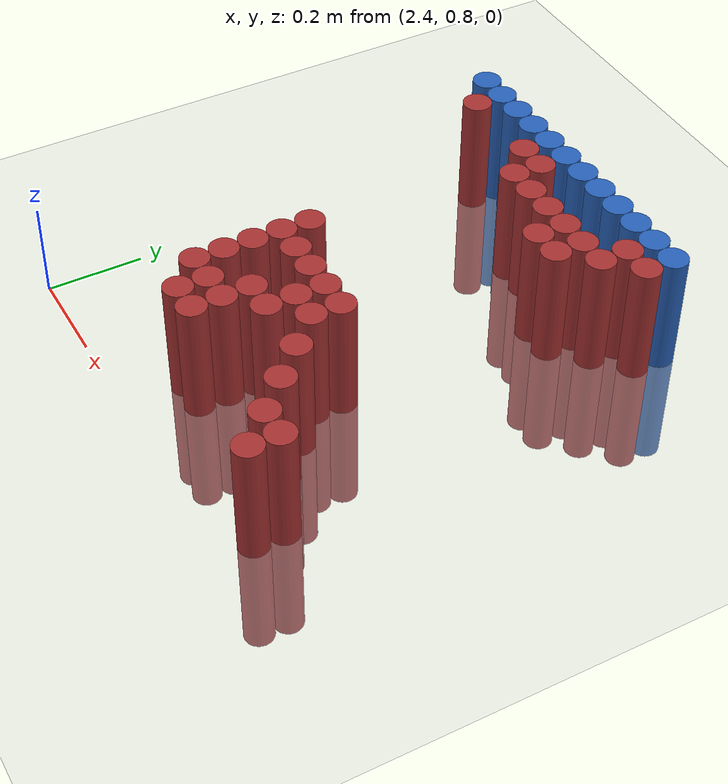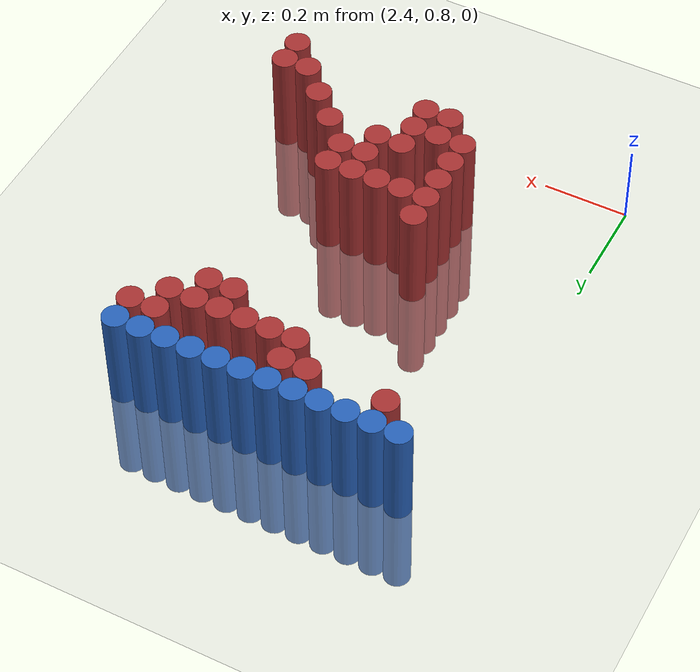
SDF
<sdf version="1.6">
 <world name="default">
  <model name="ground_plane">
   <static>1</static>
   <link name="link">
    <collision name="collision">
     <geometry><plane><normal>0 0 1</normal><size>100 100</size></plane></geometry>
     <surface><friction><ode><mu>100</mu><mu2>50</mu2></ode></friction></surface>
    </collision>
    <visual name="visual">
     <cast_shadows>0</cast_shadows>
     <geometry><plane><normal>0 0 1</normal><size>100 100</size></plane></geometry>
     <material>
      <script><uri>file://media/materials/scripts/gazebo.material</uri><name>Gazebo/Grey</name></script>
     </material>
    </visual>
   </link>
  </model>
  <model name="unit_cylinder_102">
   <static>1</static>
   <pose>2.490000 1.770000 0.000000 0.000000 0.000000 0.000000</pose>
   <link name="link">
    <inertial>
     <mass>1</mass>
     <inertia><ixx>0.145833</ixx><ixy>0</ixy><ixz>0</ixz><iyy>0.145833</iyy><iyz>0</iyz><izz>0.125</izz></inertia>
    </inertial>
    <collision name="collision">
     <geometry><cylinder><radius>0.030000</radius><length>0.5</length></cylinder></geometry>
    </collision>
    <visual name="visual">
     <geometry><cylinder><radius>0.030000</radius><length>0.5</length></cylinder></geometry>
     <material>
      <ambient>0.152000 0.379000 0.720000 1</ambient>
      <diffuse>0.152000 0.379000 0.720000 1</diffuse>
     </material>
     <material>
      <script><name>Gazebo/Grey</name><uri>file://media/materials/scripts/gazebo.material</uri></script>
     </material>
    </visual>
   </link>
  </model>
  <model name="unit_cylinder_103">
   <static>1</static>
   <pose>2.550000 1.770000 0.000000 0.000000 0.000000 0.000000</pose>
   <link name="link">
    <inertial>
     <mass>1</mass>
     <inertia><ixx>0.145833</ixx><ixy>0</ixy><ixz>0</ixz><iyy>0.145833</iyy><iyz>0</iyz><izz>0.125</izz></inertia>
    </inertial>
    <collision name="collision">
     <geometry><cylinder><radius>0.030000</radius><length>0.5</length></cylinder></geometry>
    </collision>
    <visual name="visual">
     <geometry><cylinder><radius>0.030000</radius><length>0.5</length></cylinder></geometry>
     <material>
      <ambient>0.152000 0.379000 0.720000 1</ambient>
      <diffuse>0.152000 0.379000 0.720000 1</diffuse>
     </material>
     <material>
      <script><name>Gazebo/Grey</name><uri>file://media/materials/scripts/gazebo.material</uri></script>
     </material>
    </visual>
   </link>
  </model>
  <model name="unit_cylinder_104">
   <static>1</static>
   <pose>2.610000 1.770000 0.000000 0.000000 0.000000 0.000000</pose>
   <link name="link">
    <inertial>
     <mass>1</mass>
     <inertia><ixx>0.145833</ixx><ixy>0</ixy><ixz>0</ixz><iyy>0.145833</iyy><iyz>0</iyz><izz>0.125</izz></inertia>
    </inertial>
    <collision name="collision">
     <geometry><cylinder><radius>0.030000</radius><length>0.5</length></cylinder></geometry>
    </collision>
    <visual name="visual">
     <geometry><cylinder><radius>0.030000</radius><length>0.5</length></cylinder></geometry>
     <material>
      <ambient>0.152000 0.379000 0.720000 1</ambient>
      <diffuse>0.152000 0.379000 0.720000 1</diffuse>
     </material>
     <material>
      <script><name>Gazebo/Grey</name><uri>file://media/materials/scripts/gazebo.material</uri></script>
     </material>
    </visual>
   </link>
  </model>
  <model name="unit_cylinder_105">
   <static>1</static>
   <pose>2.670000 1.770000 0.000000 0.000000 0.000000 0.000000</pose>
   <link name="link">
    <inertial>
     <mass>1</mass>
     <inertia><ixx>0.145833</ixx><ixy>0</ixy><ixz>0</ixz><iyy>0.145833</iyy><iyz>0</iyz><izz>0.125</izz></inertia>
    </inertial>
    <collision name="collision">
     <geometry><cylinder><radius>0.030000</radius><length>0.5</length></cylinder></geometry>
    </collision>
    <visual name="visual">
     <geometry><cylinder><radius>0.030000</radius><length>0.5</length></cylinder></geometry>
     <material>
      <ambient>0.152000 0.379000 0.720000 1</ambient>
      <diffuse>0.152000 0.379000 0.720000 1</diffuse>
     </material>
     <material>
      <script><name>Gazebo/Grey</name><uri>file://media/materials/scripts/gazebo.material</uri></script>
     </material>
    </visual>
   </link>
  </model>
  <model name="unit_cylinder_106">
   <static>1</static>
   <pose>2.730000 1.770000 0.000000 0.000000 0.000000 0.000000</pose>
   <link name="link">
    <inertial>
     <mass>1</mass>
     <inertia><ixx>0.145833</ixx><ixy>0</ixy><ixz>0</ixz><iyy>0.145833</iyy><iyz>0</iyz><izz>0.125</izz></inertia>
    </inertial>
    <collision name="collision">
     <geometry><cylinder><radius>0.030000</radius><length>0.5</length></cylinder></geometry>
    </collision>
    <visual name="visual">
     <geometry><cylinder><radius>0.030000</radius><length>0.5</length></cylinder></geometry>
     <material>
      <ambient>0.152000 0.379000 0.720000 1</ambient>
      <diffuse>0.152000 0.379000 0.720000 1</diffuse>
     </material>
     <material>
      <script><name>Gazebo/Grey</name><uri>file://media/materials/scripts/gazebo.material</uri></script>
     </material>
    </visual>
   </link>
  </model>
  <model name="unit_cylinder_107">
   <static>1</static>
   <pose>2.790000 1.770000 0.000000 0.000000 0.000000 0.000000</pose>
   <link name="link">
    <inertial>
     <mass>1</mass>
     <inertia><ixx>0.145833</ixx><ixy>0</ixy><ixz>0</ixz><iyy>0.145833</iyy><iyz>0</iyz><izz>0.125</izz></inertia>
    </inertial>
    <collision name="collision">
     <geometry><cylinder><radius>0.030000</radius><length>0.5</length></cylinder></geometry>
    </collision>
    <visual name="visual">
     <geometry><cylinder><radius>0.030000</radius><length>0.5</length></cylinder></geometry>
     <material>
      <ambient>0.152000 0.379000 0.720000 1</ambient>
      <diffuse>0.152000 0.379000 0.720000 1</diffuse>
     </material>
     <material>
      <script><name>Gazebo/Grey</name><uri>file://media/materials/scripts/gazebo.material</uri></script>
     </material>
    </visual>
   </link>
  </model>
  <model name="unit_cylinder_108">
   <static>1</static>
   <pose>2.850000 1.770000 0.000000 0.000000 0.000000 0.000000</pose>
   <link name="link">
    <inertial>
     <mass>1</mass>
     <inertia><ixx>0.145833</ixx><ixy>0</ixy><ixz>0</ixz><iyy>0.145833</iyy><iyz>0</iyz><izz>0.125</izz></inertia>
    </inertial>
    <collision name="collision">
     <geometry><cylinder><radius>0.030000</radius><length>0.5</length></cylinder></geometry>
    </collision>
    <visual name="visual">
     <geometry><cylinder><radius>0.030000</radius><length>0.5</length></cylinder></geometry>
     <material>
      <ambient>0.152000 0.379000 0.720000 1</ambient>
      <diffuse>0.152000 0.379000 0.720000 1</diffuse>
     </material>
     <material>
      <script><name>Gazebo/Grey</name><uri>file://media/materials/scripts/gazebo.material</uri></script>
     </material>
    </visual>
   </link>
  </model>
  <model name="unit_cylinder_109">
   <static>1</static>
   <pose>2.910000 1.770000 0.000000 0.000000 0.000000 0.000000</pose>
   <link name="link">
    <inertial>
     <mass>1</mass>
     <inertia><ixx>0.145833</ixx><ixy>0</ixy><ixz>0</ixz><iyy>0.145833</iyy><iyz>0</iyz><izz>0.125</izz></inertia>
    </inertial>
    <collision name="collision">
     <geometry><cylinder><radius>0.030000</radius><length>0.5</length></cylinder></geometry>
    </collision>
    <visual name="visual">
     <geometry><cylinder><radius>0.030000</radius><length>0.5</length></cylinder></geometry>
     <material>
      <ambient>0.152000 0.379000 0.720000 1</ambient>
      <diffuse>0.152000 0.379000 0.720000 1</diffuse>
     </material>
     <material>
      <script><name>Gazebo/Grey</name><uri>file://media/materials/scripts/gazebo.material</uri></script>
     </material>
    </visual>
   </link>
  </model>
  <model name="unit_cylinder_110">
   <static>1</static>
   <pose>2.970000 1.770000 0.000000 0.000000 0.000000 0.000000</pose>
   <link name="link">
    <inertial>
     <mass>1</mass>
     <inertia><ixx>0.145833</ixx><ixy>0</ixy><ixz>0</ixz><iyy>0.145833</iyy><iyz>0</iyz><izz>0.125</izz></inertia>
    </inertial>
    <collision name="collision">
     <geometry><cylinder><radius>0.030000</radius><length>0.5</length></cylinder></geometry>
    </collision>
    <visual name="visual">
     <geometry><cylinder><radius>0.030000</radius><length>0.5</length></cylinder></geometry>
     <material>
      <ambient>0.152000 0.379000 0.720000 1</ambient>
      <diffuse>0.152000 0.379000 0.720000 1</diffuse>
     </material>
     <material>
      <script><name>Gazebo/Grey</name><uri>file://media/materials/scripts/gazebo.material</uri></script>
     </material>
    </visual>
   </link>
  </model>
  <model name="unit_cylinder_111">
   <static>1</static>
   <pose>3.030000 1.770000 0.000000 0.000000 0.000000 0.000000</pose>
   <link name="link">
    <inertial>
     <mass>1</mass>
     <inertia><ixx>0.145833</ixx><ixy>0</ixy><ixz>0</ixz><iyy>0.145833</iyy><iyz>0</iyz><izz>0.125</izz></inertia>
    </inertial>
    <collision name="collision">
     <geometry><cylinder><radius>0.030000</radius><length>0.5</length></cylinder></geometry>
    </collision>
    <visual name="visual">
     <geometry><cylinder><radius>0.030000</radius><length>0.5</length></cylinder></geometry>
     <material>
      <ambient>0.152000 0.379000 0.720000 1</ambient>
      <diffuse>0.152000 0.379000 0.720000 1</diffuse>
     </material>
     <material>
      <script><name>Gazebo/Grey</name><uri>file://media/materials/scripts/gazebo.material</uri></script>
     </material>
    </visual>
   </link>
  </model>
  <model name="unit_cylinder_112">
   <static>1</static>
   <pose>3.090000 1.770000 0.000000 0.000000 0.000000 0.000000</pose>
   <link name="link">
    <inertial>
     <mass>1</mass>
     <inertia><ixx>0.145833</ixx><ixy>0</ixy><ixz>0</ixz><iyy>0.145833</iyy><iyz>0</iyz><izz>0.125</izz></inertia>
    </inertial>
    <collision name="collision">
     <geometry><cylinder><radius>0.030000</radius><length>0.5</length></cylinder></geometry>
    </collision>
    <visual name="visual">
     <geometry><cylinder><radius>0.030000</radius><length>0.5</length></cylinder></geometry>
     <material>
      <ambient>0.152000 0.379000 0.720000 1</ambient>
      <diffuse>0.152000 0.379000 0.720000 1</diffuse>
     </material>
     <material>
      <script><name>Gazebo/Grey</name><uri>file://media/materials/scripts/gazebo.material</uri></script>
     </material>
    </visual>
   </link>
  </model>
  <model name="unit_cylinder_113">
   <static>1</static>
   <pose>3.150000 1.770000 0.000000 0.000000 0.000000 0.000000</pose>
   <link name="link">
    <inertial>
     <mass>1</mass>
     <inertia><ixx>0.145833</ixx><ixy>0</ixy><ixz>0</ixz><iyy>0.145833</iyy><iyz>0</iyz><izz>0.125</izz></inertia>
    </inertial>
    <collision name="collision">
     <geometry><cylinder><radius>0.030000</radius><length>0.5</length></cylinder></geometry>
    </collision>
    <visual name="visual">
     <geometry><cylinder><radius>0.030000</radius><length>0.5</length></cylinder></geometry>
     <material>
      <ambient>0.152000 0.379000 0.720000 1</ambient>
      <diffuse>0.152000 0.379000 0.720000 1</diffuse>
     </material>
     <material>
      <script><name>Gazebo/Grey</name><uri>file://media/materials/scripts/gazebo.material</uri></script>
     </material>
    </visual>
   </link>
  </model>
  <model name="unit_cylinder_130">
   <static>1</static>
   <pose>2.550000 1.710000 0.000000 0.000000 0.000000 0.000000</pose>
   <link name="link">
    <inertial>
     <mass>1</mass>
     <inertia><ixx>0.145833</ixx><ixy>0</ixy><ixz>0</ixz><iyy>0.145833</iyy><iyz>0</iyz><izz>0.125</izz></inertia>
    </inertial>
    <collision name="collision">
     <geometry><cylinder><radius>0.030000</radius><length>0.5</length></cylinder></geometry>
    </collision>
    <visual name="visual">
     <geometry><cylinder><radius>0.030000</radius><length>0.5</length></cylinder></geometry>
     <material>
      <ambient>0.648000 0.192000 0.192000 1</ambient>
      <diffuse>0.648000 0.192000 0.192000 1</diffuse>
     </material>
     <material>
      <script><name>Gazebo/Grey</name><uri>file://media/materials/scripts/gazebo.material</uri></script>
     </material>
    </visual>
   </link>
  </model>
  <model name="unit_cylinder_131">
   <static>1</static>
   <pose>2.730000 1.710000 0.000000 0.000000 0.000000 0.000000</pose>
   <link name="link">
    <inertial>
     <mass>1</mass>
     <inertia><ixx>0.145833</ixx><ixy>0</ixy><ixz>0</ixz><iyy>0.145833</iyy><iyz>0</iyz><izz>0.125</izz></inertia>
    </inertial>
    <collision name="collision">
     <geometry><cylinder><radius>0.030000</radius><length>0.5</length></cylinder></geometry>
    </collision>
    <visual name="visual">
     <geometry><cylinder><radius>0.030000</radius><length>0.5</length></cylinder></geometry>
     <material>
      <ambient>0.648000 0.192000 0.192000 1</ambient>
      <diffuse>0.648000 0.192000 0.192000 1</diffuse>
     </material>
     <material>
      <script><name>Gazebo/Grey</name><uri>file://media/materials/scripts/gazebo.material</uri></script>
     </material>
    </visual>
   </link>
  </model>
  <model name="unit_cylinder_132">
   <static>1</static>
   <pose>2.790000 1.710000 0.000000 0.000000 0.000000 0.000000</pose>
   <link name="link">
    <inertial>
     <mass>1</mass>
     <inertia><ixx>0.145833</ixx><ixy>0</ixy><ixz>0</ixz><iyy>0.145833</iyy><iyz>0</iyz><izz>0.125</izz></inertia>
    </inertial>
    <collision name="collision">
     <geometry><cylinder><radius>0.030000</radius><length>0.5</length></cylinder></geometry>
    </collision>
    <visual name="visual">
     <geometry><cylinder><radius>0.030000</radius><length>0.5</length></cylinder></geometry>
     <material>
      <ambient>0.648000 0.192000 0.192000 1</ambient>
      <diffuse>0.648000 0.192000 0.192000 1</diffuse>
     </material>
     <material>
      <script><name>Gazebo/Grey</name><uri>file://media/materials/scripts/gazebo.material</uri></script>
     </material>
    </visual>
   </link>
  </model>
  <model name="unit_cylinder_133">
   <static>1</static>
   <pose>3.090000 1.710000 0.000000 0.000000 0.000000 0.000000</pose>
   <link name="link">
    <inertial>
     <mass>1</mass>
     <inertia><ixx>0.145833</ixx><ixy>0</ixy><ixz>0</ixz><iyy>0.145833</iyy><iyz>0</iyz><izz>0.125</izz></inertia>
    </inertial>
    <collision name="collision">
     <geometry><cylinder><radius>0.030000</radius><length>0.5</length></cylinder></geometry>
    </collision>
    <visual name="visual">
     <geometry><cylinder><radius>0.030000</radius><length>0.5</length></cylinder></geometry>
     <material>
      <ambient>0.648000 0.192000 0.192000 1</ambient>
      <diffuse>0.648000 0.192000 0.192000 1</diffuse>
     </material>
     <material>
      <script><name>Gazebo/Grey</name><uri>file://media/materials/scripts/gazebo.material</uri></script>
     </material>
    </visual>
   </link>
  </model>
  <model name="unit_cylinder_134">
   <static>1</static>
   <pose>3.150000 1.710000 0.000000 0.000000 0.000000 0.000000</pose>
   <link name="link">
    <inertial>
     <mass>1</mass>
     <inertia><ixx>0.145833</ixx><ixy>0</ixy><ixz>0</ixz><iyy>0.145833</iyy><iyz>0</iyz><izz>0.125</izz></inertia>
    </inertial>
    <collision name="collision">
     <geometry><cylinder><radius>0.030000</radius><length>0.5</length></cylinder></geometry>
    </collision>
    <visual name="visual">
     <geometry><cylinder><radius>0.030000</radius><length>0.5</length></cylinder></geometry>
     <material>
      <ambient>0.648000 0.192000 0.192000 1</ambient>
      <diffuse>0.648000 0.192000 0.192000 1</diffuse>
     </material>
     <material>
      <script><name>Gazebo/Grey</name><uri>file://media/materials/scripts/gazebo.material</uri></script>
     </material>
    </visual>
   </link>
  </model>
  <model name="unit_cylinder_142">
   <static>1</static>
   <pose>2.790000 1.650000 0.000000 0.000000 0.000000 0.000000</pose>
   <link name="link">
    <inertial>
     <mass>1</mass>
     <inertia><ixx>0.145833</ixx><ixy>0</ixy><ixz>0</ixz><iyy>0.145833</iyy><iyz>0</iyz><izz>0.125</izz></inertia>
    </inertial>
    <collision name="collision">
     <geometry><cylinder><radius>0.030000</radius><length>0.5</length></cylinder></geometry>
    </collision>
    <visual name="visual">
     <geometry><cylinder><radius>0.030000</radius><length>0.5</length></cylinder></geometry>
     <material>
      <ambient>0.648000 0.192000 0.192000 1</ambient>
      <diffuse>0.648000 0.192000 0.192000 1</diffuse>
     </material>
     <material>
      <script><name>Gazebo/Grey</name><uri>file://media/materials/scripts/gazebo.material</uri></script>
     </material>
    </visual>
   </link>
  </model>
  <model name="unit_cylinder_143">
   <static>1</static>
   <pose>2.850000 1.650000 0.000000 0.000000 0.000000 0.000000</pose>
   <link name="link">
    <inertial>
     <mass>1</mass>
     <inertia><ixx>0.145833</ixx><ixy>0</ixy><ixz>0</ixz><iyy>0.145833</iyy><iyz>0</iyz><izz>0.125</izz></inertia>
    </inertial>
    <collision name="collision">
     <geometry><cylinder><radius>0.030000</radius><length>0.5</length></cylinder></geometry>
    </collision>
    <visual name="visual">
     <geometry><cylinder><radius>0.030000</radius><length>0.5</length></cylinder></geometry>
     <material>
      <ambient>0.648000 0.192000 0.192000 1</ambient>
      <diffuse>0.648000 0.192000 0.192000 1</diffuse>
     </material>
     <material>
      <script><name>Gazebo/Grey</name><uri>file://media/materials/scripts/gazebo.material</uri></script>
     </material>
    </visual>
   </link>
  </model>
  <model name="unit_cylinder_144">
   <static>1</static>
   <pose>2.910000 1.650000 0.000000 0.000000 0.000000 0.000000</pose>
   <link name="link">
    <inertial>
     <mass>1</mass>
     <inertia><ixx>0.145833</ixx><ixy>0</ixy><ixz>0</ixz><iyy>0.145833</iyy><iyz>0</iyz><izz>0.125</izz></inertia>
    </inertial>
    <collision name="collision">
     <geometry><cylinder><radius>0.030000</radius><length>0.5</length></cylinder></geometry>
    </collision>
    <visual name="visual">
     <geometry><cylinder><radius>0.030000</radius><length>0.5</length></cylinder></geometry>
     <material>
      <ambient>0.648000 0.192000 0.192000 1</ambient>
      <diffuse>0.648000 0.192000 0.192000 1</diffuse>
     </material>
     <material>
      <script><name>Gazebo/Grey</name><uri>file://media/materials/scripts/gazebo.material</uri></script>
     </material>
    </visual>
   </link>
  </model>
  <model name="unit_cylinder_145">
   <static>1</static>
   <pose>2.970000 1.650000 0.000000 0.000000 0.000000 0.000000</pose>
   <link name="link">
    <inertial>
     <mass>1</mass>
     <inertia><ixx>0.145833</ixx><ixy>0</ixy><ixz>0</ixz><iyy>0.145833</iyy><iyz>0</iyz><izz>0.125</izz></inertia>
    </inertial>
    <collision name="collision">
     <geometry><cylinder><radius>0.030000</radius><length>0.5</length></cylinder></geometry>
    </collision>
    <visual name="visual">
     <geometry><cylinder><radius>0.030000</radius><length>0.5</length></cylinder></geometry>
     <material>
      <ambient>0.648000 0.192000 0.192000 1</ambient>
      <diffuse>0.648000 0.192000 0.192000 1</diffuse>
     </material>
     <material>
      <script><name>Gazebo/Grey</name><uri>file://media/materials/scripts/gazebo.material</uri></script>
     </material>
    </visual>
   </link>
  </model>
  <model name="unit_cylinder_146">
   <static>1</static>
   <pose>3.030000 1.650000 0.000000 0.000000 0.000000 0.000000</pose>
   <link name="link">
    <inertial>
     <mass>1</mass>
     <inertia><ixx>0.145833</ixx><ixy>0</ixy><ixz>0</ixz><iyy>0.145833</iyy><iyz>0</iyz><izz>0.125</izz></inertia>
    </inertial>
    <collision name="collision">
     <geometry><cylinder><radius>0.030000</radius><length>0.5</length></cylinder></geometry>
    </collision>
    <visual name="visual">
     <geometry><cylinder><radius>0.030000</radius><length>0.5</length></cylinder></geometry>
     <material>
      <ambient>0.648000 0.192000 0.192000 1</ambient>
      <diffuse>0.648000 0.192000 0.192000 1</diffuse>
     </material>
     <material>
      <script><name>Gazebo/Grey</name><uri>file://media/materials/scripts/gazebo.material</uri></script>
     </material>
    </visual>
   </link>
  </model>
  <model name="unit_cylinder_147">
   <static>1</static>
   <pose>3.090000 1.650000 0.000000 0.000000 0.000000 0.000000</pose>
   <link name="link">
    <inertial>
     <mass>1</mass>
     <inertia><ixx>0.145833</ixx><ixy>0</ixy><ixz>0</ixz><iyy>0.145833</iyy><iyz>0</iyz><izz>0.125</izz></inertia>
    </inertial>
    <collision name="collision">
     <geometry><cylinder><radius>0.030000</radius><length>0.5</length></cylinder></geometry>
    </collision>
    <visual name="visual">
     <geometry><cylinder><radius>0.030000</radius><length>0.5</length></cylinder></geometry>
     <material>
      <ambient>0.648000 0.192000 0.192000 1</ambient>
      <diffuse>0.648000 0.192000 0.192000 1</diffuse>
     </material>
     <material>
      <script><name>Gazebo/Grey</name><uri>file://media/materials/scripts/gazebo.material</uri></script>
     </material>
    </visual>
   </link>
  </model>
  <model name="unit_cylinder_152">
   <static>1</static>
   <pose>2.970000 1.590000 0.000000 0.000000 0.000000 0.000000</pose>
   <link name="link">
    <inertial>
     <mass>1</mass>
     <inertia><ixx>0.145833</ixx><ixy>0</ixy><ixz>0</ixz><iyy>0.145833</iyy><iyz>0</iyz><izz>0.125</izz></inertia>
    </inertial>
    <collision name="collision">
     <geometry><cylinder><radius>0.030000</radius><length>0.5</length></cylinder></geometry>
    </collision>
    <visual name="visual">
     <geometry><cylinder><radius>0.030000</radius><length>0.5</length></cylinder></geometry>
     <material>
      <ambient>0.648000 0.192000 0.192000 1</ambient>
      <diffuse>0.648000 0.192000 0.192000 1</diffuse>
     </material>
     <material>
      <script><name>Gazebo/Grey</name><uri>file://media/materials/scripts/gazebo.material</uri></script>
     </material>
    </visual>
   </link>
  </model>
  <model name="unit_cylinder_153">
   <static>1</static>
   <pose>3.030000 1.590000 0.000000 0.000000 0.000000 0.000000</pose>
   <link name="link">
    <inertial>
     <mass>1</mass>
     <inertia><ixx>0.145833</ixx><ixy>0</ixy><ixz>0</ixz><iyy>0.145833</iyy><iyz>0</iyz><izz>0.125</izz></inertia>
    </inertial>
    <collision name="collision">
     <geometry><cylinder><radius>0.030000</radius><length>0.5</length></cylinder></geometry>
    </collision>
    <visual name="visual">
     <geometry><cylinder><radius>0.030000</radius><length>0.5</length></cylinder></geometry>
     <material>
      <ambient>0.648000 0.192000 0.192000 1</ambient>
      <diffuse>0.648000 0.192000 0.192000 1</diffuse>
     </material>
     <material>
      <script><name>Gazebo/Grey</name><uri>file://media/materials/scripts/gazebo.material</uri></script>
     </material>
    </visual>
   </link>
  </model>
  <model name="unit_cylinder_166">
   <static>1</static>
   <pose>2.730000 1.230000 0.000000 0.000000 0.000000 0.000000</pose>
   <link name="link">
    <inertial>
     <mass>1</mass>
     <inertia><ixx>0.145833</ixx><ixy>0</ixy><ixz>0</ixz><iyy>0.145833</iyy><iyz>0</iyz><izz>0.125</izz></inertia>
    </inertial>
    <collision name="collision">
     <geometry><cylinder><radius>0.030000</radius><length>0.5</length></cylinder></geometry>
    </collision>
    <visual name="visual">
     <geometry><cylinder><radius>0.030000</radius><length>0.5</length></cylinder></geometry>
     <material>
      <ambient>0.648000 0.192000 0.192000 1</ambient>
      <diffuse>0.648000 0.192000 0.192000 1</diffuse>
     </material>
     <material>
      <script><name>Gazebo/Grey</name><uri>file://media/materials/scripts/gazebo.material</uri></script>
     </material>
    </visual>
   </link>
  </model>
  <model name="unit_cylinder_167">
   <static>1</static>
   <pose>2.730000 1.170000 0.000000 0.000000 0.000000 0.000000</pose>
   <link name="link">
    <inertial>
     <mass>1</mass>
     <inertia><ixx>0.145833</ixx><ixy>0</ixy><ixz>0</ixz><iyy>0.145833</iyy><iyz>0</iyz><izz>0.125</izz></inertia>
    </inertial>
    <collision name="collision">
     <geometry><cylinder><radius>0.030000</radius><length>0.5</length></cylinder></geometry>
    </collision>
    <visual name="visual">
     <geometry><cylinder><radius>0.030000</radius><length>0.5</length></cylinder></geometry>
     <material>
      <ambient>0.648000 0.192000 0.192000 1</ambient>
      <diffuse>0.648000 0.192000 0.192000 1</diffuse>
     </material>
     <material>
      <script><name>Gazebo/Grey</name><uri>file://media/materials/scripts/gazebo.material</uri></script>
     </material>
    </visual>
   </link>
  </model>
  <model name="unit_cylinder_168">
   <static>1</static>
   <pose>2.790000 1.170000 0.000000 0.000000 0.000000 0.000000</pose>
   <link name="link">
    <inertial>
     <mass>1</mass>
     <inertia><ixx>0.145833</ixx><ixy>0</ixy><ixz>0</ixz><iyy>0.145833</iyy><iyz>0</iyz><izz>0.125</izz></inertia>
    </inertial>
    <collision name="collision">
     <geometry><cylinder><radius>0.030000</radius><length>0.5</length></cylinder></geometry>
    </collision>
    <visual name="visual">
     <geometry><cylinder><radius>0.030000</radius><length>0.5</length></cylinder></geometry>
     <material>
      <ambient>0.648000 0.192000 0.192000 1</ambient>
      <diffuse>0.648000 0.192000 0.192000 1</diffuse>
     </material>
     <material>
      <script><name>Gazebo/Grey</name><uri>file://media/materials/scripts/gazebo.material</uri></script>
     </material>
    </visual>
   </link>
  </model>
  <model name="unit_cylinder_169">
   <static>1</static>
   <pose>2.850000 1.170000 0.000000 0.000000 0.000000 0.000000</pose>
   <link name="link">
    <inertial>
     <mass>1</mass>
     <inertia><ixx>0.145833</ixx><ixy>0</ixy><ixz>0</ixz><iyy>0.145833</iyy><iyz>0</iyz><izz>0.125</izz></inertia>
    </inertial>
    <collision name="collision">
     <geometry><cylinder><radius>0.030000</radius><length>0.5</length></cylinder></geometry>
    </collision>
    <visual name="visual">
     <geometry><cylinder><radius>0.030000</radius><length>0.5</length></cylinder></geometry>
     <material>
      <ambient>0.648000 0.192000 0.192000 1</ambient>
      <diffuse>0.648000 0.192000 0.192000 1</diffuse>
     </material>
     <material>
      <script><name>Gazebo/Grey</name><uri>file://media/materials/scripts/gazebo.material</uri></script>
     </material>
    </visual>
   </link>
  </model>
  <model name="unit_cylinder_170">
   <static>1</static>
   <pose>2.910000 1.170000 0.000000 0.000000 0.000000 0.000000</pose>
   <link name="link">
    <inertial>
     <mass>1</mass>
     <inertia><ixx>0.145833</ixx><ixy>0</ixy><ixz>0</ixz><iyy>0.145833</iyy><iyz>0</iyz><izz>0.125</izz></inertia>
    </inertial>
    <collision name="collision">
     <geometry><cylinder><radius>0.030000</radius><length>0.5</length></cylinder></geometry>
    </collision>
    <visual name="visual">
     <geometry><cylinder><radius>0.030000</radius><length>0.5</length></cylinder></geometry>
     <material>
      <ambient>0.648000 0.192000 0.192000 1</ambient>
      <diffuse>0.648000 0.192000 0.192000 1</diffuse>
     </material>
     <material>
      <script><name>Gazebo/Grey</name><uri>file://media/materials/scripts/gazebo.material</uri></script>
     </material>
    </visual>
   </link>
  </model>
  <model name="unit_cylinder_171">
   <static>1</static>
   <pose>2.970000 1.170000 0.000000 0.000000 0.000000 0.000000</pose>
   <link name="link">
    <inertial>
     <mass>1</mass>
     <inertia><ixx>0.145833</ixx><ixy>0</ixy><ixz>0</ixz><iyy>0.145833</iyy><iyz>0</iyz><izz>0.125</izz></inertia>
    </inertial>
    <collision name="collision">
     <geometry><cylinder><radius>0.030000</radius><length>0.5</length></cylinder></geometry>
    </collision>
    <visual name="visual">
     <geometry><cylinder><radius>0.030000</radius><length>0.5</length></cylinder></geometry>
     <material>
      <ambient>0.648000 0.192000 0.192000 1</ambient>
      <diffuse>0.648000 0.192000 0.192000 1</diffuse>
     </material>
     <material>
      <script><name>Gazebo/Grey</name><uri>file://media/materials/scripts/gazebo.material</uri></script>
     </material>
    </visual>
   </link>
  </model>
  <model name="unit_cylinder_175">
   <static>1</static>
   <pose>2.730000 1.110000 0.000000 0.000000 0.000000 0.000000</pose>
   <link name="link">
    <inertial>
     <mass>1</mass>
     <inertia><ixx>0.145833</ixx><ixy>0</ixy><ixz>0</ixz><iyy>0.145833</iyy><iyz>0</iyz><izz>0.125</izz></inertia>
    </inertial>
    <collision name="collision">
     <geometry><cylinder><radius>0.030000</radius><length>0.5</length></cylinder></geometry>
    </collision>
    <visual name="visual">
     <geometry><cylinder><radius>0.030000</radius><length>0.5</length></cylinder></geometry>
     <material>
      <ambient>0.648000 0.192000 0.192000 1</ambient>
      <diffuse>0.648000 0.192000 0.192000 1</diffuse>
     </material>
     <material>
      <script><name>Gazebo/Grey</name><uri>file://media/materials/scripts/gazebo.material</uri></script>
     </material>
    </visual>
   </link>
  </model>
  <model name="unit_cylinder_176">
   <static>1</static>
   <pose>2.910000 1.110000 0.000000 0.000000 0.000000 0.000000</pose>
   <link name="link">
    <inertial>
     <mass>1</mass>
     <inertia><ixx>0.145833</ixx><ixy>0</ixy><ixz>0</ixz><iyy>0.145833</iyy><iyz>0</iyz><izz>0.125</izz></inertia>
    </inertial>
    <collision name="collision">
     <geometry><cylinder><radius>0.030000</radius><length>0.5</length></cylinder></geometry>
    </collision>
    <visual name="visual">
     <geometry><cylinder><radius>0.030000</radius><length>0.5</length></cylinder></geometry>
     <material>
      <ambient>0.648000 0.192000 0.192000 1</ambient>
      <diffuse>0.648000 0.192000 0.192000 1</diffuse>
     </material>
     <material>
      <script><name>Gazebo/Grey</name><uri>file://media/materials/scripts/gazebo.material</uri></script>
     </material>
    </visual>
   </link>
  </model>
  <model name="unit_cylinder_177">
   <static>1</static>
   <pose>2.970000 1.110000 0.000000 0.000000 0.000000 0.000000</pose>
   <link name="link">
    <inertial>
     <mass>1</mass>
     <inertia><ixx>0.145833</ixx><ixy>0</ixy><ixz>0</ixz><iyy>0.145833</iyy><iyz>0</iyz><izz>0.125</izz></inertia>
    </inertial>
    <collision name="collision">
     <geometry><cylinder><radius>0.030000</radius><length>0.5</length></cylinder></geometry>
    </collision>
    <visual name="visual">
     <geometry><cylinder><radius>0.030000</radius><length>0.5</length></cylinder></geometry>
     <material>
      <ambient>0.648000 0.192000 0.192000 1</ambient>
      <diffuse>0.648000 0.192000 0.192000 1</diffuse>
     </material>
     <material>
      <script><name>Gazebo/Grey</name><uri>file://media/materials/scripts/gazebo.material</uri></script>
     </material>
    </visual>
   </link>
  </model>
  <model name="unit_cylinder_185">
   <static>1</static>
   <pose>2.730000 1.050000 0.000000 0.000000 0.000000 0.000000</pose>
   <link name="link">
    <inertial>
     <mass>1</mass>
     <inertia><ixx>0.145833</ixx><ixy>0</ixy><ixz>0</ixz><iyy>0.145833</iyy><iyz>0</iyz><izz>0.125</izz></inertia>
    </inertial>
    <collision name="collision">
     <geometry><cylinder><radius>0.030000</radius><length>0.5</length></cylinder></geometry>
    </collision>
    <visual name="visual">
     <geometry><cylinder><radius>0.030000</radius><length>0.5</length></cylinder></geometry>
     <material>
      <ambient>0.648000 0.192000 0.192000 1</ambient>
      <diffuse>0.648000 0.192000 0.192000 1</diffuse>
     </material>
     <material>
      <script><name>Gazebo/Grey</name><uri>file://media/materials/scripts/gazebo.material</uri></script>
     </material>
    </visual>
   </link>
  </model>
  <model name="unit_cylinder_186">
   <static>1</static>
   <pose>2.850000 1.050000 0.000000 0.000000 0.000000 0.000000</pose>
   <link name="link">
    <inertial>
     <mass>1</mass>
     <inertia><ixx>0.145833</ixx><ixy>0</ixy><ixz>0</ixz><iyy>0.145833</iyy><iyz>0</iyz><izz>0.125</izz></inertia>
    </inertial>
    <collision name="collision">
     <geometry><cylinder><radius>0.030000</radius><length>0.5</length></cylinder></geometry>
    </collision>
    <visual name="visual">
     <geometry><cylinder><radius>0.030000</radius><length>0.5</length></cylinder></geometry>
     <material>
      <ambient>0.648000 0.192000 0.192000 1</ambient>
      <diffuse>0.648000 0.192000 0.192000 1</diffuse>
     </material>
     <material>
      <script><name>Gazebo/Grey</name><uri>file://media/materials/scripts/gazebo.material</uri></script>
     </material>
    </visual>
   </link>
  </model>
  <model name="unit_cylinder_187">
   <static>1</static>
   <pose>2.910000 1.050000 0.000000 0.000000 0.000000 0.000000</pose>
   <link name="link">
    <inertial>
     <mass>1</mass>
     <inertia><ixx>0.145833</ixx><ixy>0</ixy><ixz>0</ixz><iyy>0.145833</iyy><iyz>0</iyz><izz>0.125</izz></inertia>
    </inertial>
    <collision name="collision">
     <geometry><cylinder><radius>0.030000</radius><length>0.5</length></cylinder></geometry>
    </collision>
    <visual name="visual">
     <geometry><cylinder><radius>0.030000</radius><length>0.5</length></cylinder></geometry>
     <material>
      <ambient>0.648000 0.192000 0.192000 1</ambient>
      <diffuse>0.648000 0.192000 0.192000 1</diffuse>
     </material>
     <material>
      <script><name>Gazebo/Grey</name><uri>file://media/materials/scripts/gazebo.material</uri></script>
     </material>
    </visual>
   </link>
  </model>
  <model name="unit_cylinder_188">
   <static>1</static>
   <pose>3.030000 1.050000 0.000000 0.000000 0.000000 0.000000</pose>
   <link name="link">
    <inertial>
     <mass>1</mass>
     <inertia><ixx>0.145833</ixx><ixy>0</ixy><ixz>0</ixz><iyy>0.145833</iyy><iyz>0</iyz><izz>0.125</izz></inertia>
    </inertial>
    <collision name="collision">
     <geometry><cylinder><radius>0.030000</radius><length>0.5</length></cylinder></geometry>
    </collision>
    <visual name="visual">
     <geometry><cylinder><radius>0.030000</radius><length>0.5</length></cylinder></geometry>
     <material>
      <ambient>0.648000 0.192000 0.192000 1</ambient>
      <diffuse>0.648000 0.192000 0.192000 1</diffuse>
     </material>
     <material>
      <script><name>Gazebo/Grey</name><uri>file://media/materials/scripts/gazebo.material</uri></script>
     </material>
    </visual>
   </link>
  </model>
  <model name="unit_cylinder_194">
   <static>1</static>
   <pose>2.730000 0.990000 0.000000 0.000000 0.000000 0.000000</pose>
   <link name="link">
    <inertial>
     <mass>1</mass>
     <inertia><ixx>0.145833</ixx><ixy>0</ixy><ixz>0</ixz><iyy>0.145833</iyy><iyz>0</iyz><izz>0.125</izz></inertia>
    </inertial>
    <collision name="collision">
     <geometry><cylinder><radius>0.030000</radius><length>0.5</length></cylinder></geometry>
    </collision>
    <visual name="visual">
     <geometry><cylinder><radius>0.030000</radius><length>0.5</length></cylinder></geometry>
     <material>
      <ambient>0.648000 0.192000 0.192000 1</ambient>
      <diffuse>0.648000 0.192000 0.192000 1</diffuse>
     </material>
     <material>
      <script><name>Gazebo/Grey</name><uri>file://media/materials/scripts/gazebo.material</uri></script>
     </material>
    </visual>
   </link>
  </model>
  <model name="unit_cylinder_195">
   <static>1</static>
   <pose>2.790000 0.990000 0.000000 0.000000 0.000000 0.000000</pose>
   <link name="link">
    <inertial>
     <mass>1</mass>
     <inertia><ixx>0.145833</ixx><ixy>0</ixy><ixz>0</ixz><iyy>0.145833</iyy><iyz>0</iyz><izz>0.125</izz></inertia>
    </inertial>
    <collision name="collision">
     <geometry><cylinder><radius>0.030000</radius><length>0.5</length></cylinder></geometry>
    </collision>
    <visual name="visual">
     <geometry><cylinder><radius>0.030000</radius><length>0.5</length></cylinder></geometry>
     <material>
      <ambient>0.648000 0.192000 0.192000 1</ambient>
      <diffuse>0.648000 0.192000 0.192000 1</diffuse>
     </material>
     <material>
      <script><name>Gazebo/Grey</name><uri>file://media/materials/scripts/gazebo.material</uri></script>
     </material>
    </visual>
   </link>
  </model>
  <model name="unit_cylinder_196">
   <static>1</static>
   <pose>2.850000 0.990000 0.000000 0.000000 0.000000 0.000000</pose>
   <link name="link">
    <inertial>
     <mass>1</mass>
     <inertia><ixx>0.145833</ixx><ixy>0</ixy><ixz>0</ixz><iyy>0.145833</iyy><iyz>0</iyz><izz>0.125</izz></inertia>
    </inertial>
    <collision name="collision">
     <geometry><cylinder><radius>0.030000</radius><length>0.5</length></cylinder></geometry>
    </collision>
    <visual name="visual">
     <geometry><cylinder><radius>0.030000</radius><length>0.5</length></cylinder></geometry>
     <material>
      <ambient>0.648000 0.192000 0.192000 1</ambient>
      <diffuse>0.648000 0.192000 0.192000 1</diffuse>
     </material>
     <material>
      <script><name>Gazebo/Grey</name><uri>file://media/materials/scripts/gazebo.material</uri></script>
     </material>
    </visual>
   </link>
  </model>
  <model name="unit_cylinder_197">
   <static>1</static>
   <pose>3.090000 0.990000 0.000000 0.000000 0.000000 0.000000</pose>
   <link name="link">
    <inertial>
     <mass>1</mass>
     <inertia><ixx>0.145833</ixx><ixy>0</ixy><ixz>0</ixz><iyy>0.145833</iyy><iyz>0</iyz><izz>0.125</izz></inertia>
    </inertial>
    <collision name="collision">
     <geometry><cylinder><radius>0.030000</radius><length>0.5</length></cylinder></geometry>
    </collision>
    <visual name="visual">
     <geometry><cylinder><radius>0.030000</radius><length>0.5</length></cylinder></geometry>
     <material>
      <ambient>0.648000 0.192000 0.192000 1</ambient>
      <diffuse>0.648000 0.192000 0.192000 1</diffuse>
     </material>
     <material>
      <script><name>Gazebo/Grey</name><uri>file://media/materials/scripts/gazebo.material</uri></script>
     </material>
    </visual>
   </link>
  </model>
  <model name="unit_cylinder_205">
   <static>1</static>
   <pose>2.790000 0.930000 0.000000 0.000000 0.000000 0.000000</pose>
   <link name="link">
    <inertial>
     <mass>1</mass>
     <inertia><ixx>0.145833</ixx><ixy>0</ixy><ixz>0</ixz><iyy>0.145833</iyy><iyz>0</iyz><izz>0.125</izz></inertia>
    </inertial>
    <collision name="collision">
     <geometry><cylinder><radius>0.030000</radius><length>0.5</length></cylinder></geometry>
    </collision>
    <visual name="visual">
     <geometry><cylinder><radius>0.030000</radius><length>0.5</length></cylinder></geometry>
     <material>
      <ambient>0.648000 0.192000 0.192000 1</ambient>
      <diffuse>0.648000 0.192000 0.192000 1</diffuse>
     </material>
     <material>
      <script><name>Gazebo/Grey</name><uri>file://media/materials/scripts/gazebo.material</uri></script>
     </material>
    </visual>
   </link>
  </model>
  <model name="unit_cylinder_206">
   <static>1</static>
   <pose>2.850000 0.930000 0.000000 0.000000 0.000000 0.000000</pose>
   <link name="link">
    <inertial>
     <mass>1</mass>
     <inertia><ixx>0.145833</ixx><ixy>0</ixy><ixz>0</ixz><iyy>0.145833</iyy><iyz>0</iyz><izz>0.125</izz></inertia>
    </inertial>
    <collision name="collision">
     <geometry><cylinder><radius>0.030000</radius><length>0.5</length></cylinder></geometry>
    </collision>
    <visual name="visual">
     <geometry><cylinder><radius>0.030000</radius><length>0.5</length></cylinder></geometry>
     <material>
      <ambient>0.648000 0.192000 0.192000 1</ambient>
      <diffuse>0.648000 0.192000 0.192000 1</diffuse>
     </material>
     <material>
      <script><name>Gazebo/Grey</name><uri>file://media/materials/scripts/gazebo.material</uri></script>
     </material>
    </visual>
   </link>
  </model>
  <model name="unit_cylinder_207">
   <static>1</static>
   <pose>3.150000 0.930000 0.000000 0.000000 0.000000 0.000000</pose>
   <link name="link">
    <inertial>
     <mass>1</mass>
     <inertia><ixx>0.145833</ixx><ixy>0</ixy><ixz>0</ixz><iyy>0.145833</iyy><iyz>0</iyz><izz>0.125</izz></inertia>
    </inertial>
    <collision name="collision">
     <geometry><cylinder><radius>0.030000</radius><length>0.5</length></cylinder></geometry>
    </collision>
    <visual name="visual">
     <geometry><cylinder><radius>0.030000</radius><length>0.5</length></cylinder></geometry>
     <material>
      <ambient>0.648000 0.192000 0.192000 1</ambient>
      <diffuse>0.648000 0.192000 0.192000 1</diffuse>
     </material>
     <material>
      <script><name>Gazebo/Grey</name><uri>file://media/materials/scripts/gazebo.material</uri></script>
     </material>
    </visual>
   </link>
  </model>
  <model name="unit_cylinder_208">
   <static>1</static>
   <pose>3.210000 0.930000 0.000000 0.000000 0.000000 0.000000</pose>
   <link name="link">
    <inertial>
     <mass>1</mass>
     <inertia><ixx>0.145833</ixx><ixy>0</ixy><ixz>0</ixz><iyy>0.145833</iyy><iyz>0</iyz><izz>0.125</izz></inertia>
    </inertial>
    <collision name="collision">
     <geometry><cylinder><radius>0.030000</radius><length>0.5</length></cylinder></geometry>
    </collision>
    <visual name="visual">
     <geometry><cylinder><radius>0.030000</radius><length>0.5</length></cylinder></geometry>
     <material>
      <ambient>0.648000 0.192000 0.192000 1</ambient>
      <diffuse>0.648000 0.192000 0.192000 1</diffuse>
     </material>
     <material>
      <script><name>Gazebo/Grey</name><uri>file://media/materials/scripts/gazebo.material</uri></script>
     </material>
    </visual>
   </link>
  </model>
  <model name="unit_cylinder_222">
   <static>1</static>
   <pose>3.210000 0.870000 0.000000 0.000000 0.000000 0.000000</pose>
   <link name="link">
    <inertial>
     <mass>1</mass>
     <inertia><ixx>0.145833</ixx><ixy>0</ixy><ixz>0</ixz><iyy>0.145833</iyy><iyz>0</iyz><izz>0.125</izz></inertia>
    </inertial>
    <collision name="collision">
     <geometry><cylinder><radius>0.030000</radius><length>0.5</length></cylinder></geometry>
    </collision>
    <visual name="visual">
     <geometry><cylinder><radius>0.030000</radius><length>0.5</length></cylinder></geometry>
     <material>
      <ambient>0.648000 0.192000 0.192000 1</ambient>
      <diffuse>0.648000 0.192000 0.192000 1</diffuse>
     </material>
     <material>
      <script><name>Gazebo/Grey</name><uri>file://media/materials/scripts/gazebo.material</uri></script>
     </material>
    </visual>
   </link>
  </model>
 </world>
</sdf>
